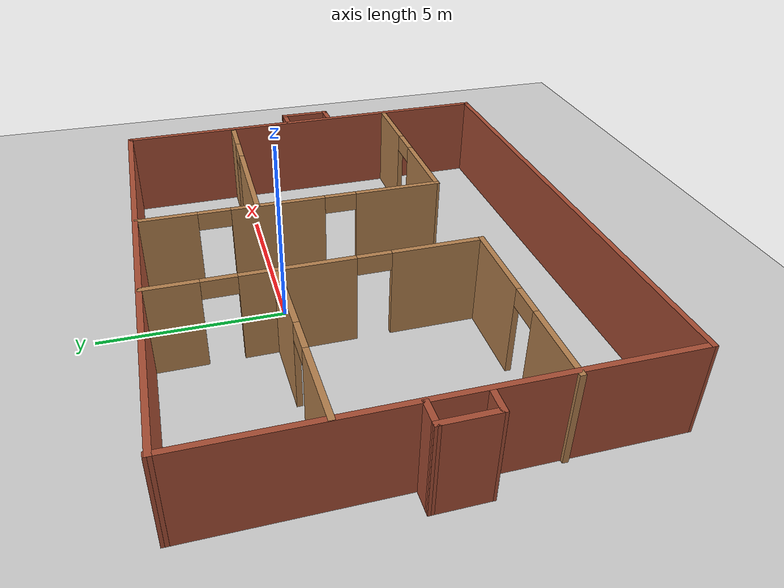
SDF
<sdf version="1.7">
 <world name="default">
  <light name="sun" type="directional">
   <pose>0 0 10 0 -0 0</pose>
   <diffuse>0.8 0.8 0.8 1</diffuse>
   <specular>0.2 0.2 0.2 1</specular>
   <attenuation>
    <range>1000</range>
    <constant>0.9</constant>
    <linear>0.01</linear>
    <quadratic>0.001</quadratic>
   </attenuation>
   <direction>-0.5 0.1 -0.9</direction>
   <spot><inner_angle>0</inner_angle><outer_angle>0</outer_angle><falloff>0</falloff></spot>
  </light>
  <model name="ground_plane">
   <static>1</static>
   <link name="link">
    <collision name="collision">
     <geometry><plane><normal>0 0 1</normal><size>100 100</size></plane></geometry>
     <surface><friction><ode><mu>100</mu><mu2>50</mu2></ode></friction></surface>
    </collision>
    <visual name="visual">
     <cast_shadows>0</cast_shadows>
     <geometry><plane><normal>0 0 1</normal><size>100 100</size></plane></geometry>
     <material>
      <script><uri>file://media/materials/scripts/gazebo.material</uri><name>Gazebo/Grey</name></script>
     </material>
    </visual>
   </link>
  </model>
  <gravity>0 0 -9.8</gravity>
  <magnetic_field>6e-06 2.3e-05 -4.2e-05</magnetic_field>
  <atmosphere type="adiabatic"/>
  <physics type="ode">
   <max_step_size>0.001</max_step_size>
   <real_time_factor>1</real_time_factor>
   <real_time_update_rate>1000</real_time_update_rate>
  </physics>
  <scene><ambient>0.4 0.4 0.4 1</ambient><background>0.7 0.7 0.7 1</background><shadows>1</shadows></scene>
  <audio><device>default</device></audio>
  <spherical_coordinates>
   <surface_model>EARTH_WGS84</surface_model>
   <latitude_deg>0</latitude_deg>
   <longitude_deg>0</longitude_deg>
   <elevation>0</elevation>
   <heading_deg>0</heading_deg>
  </spherical_coordinates>
  <model name="new_world">
   <pose>0.217712 -2.17858 0 0 -0 0</pose>
   <link name="Wall_1">
    <collision name="Wall_1_Collision">
     <geometry><box><size>11.7746 0.15 2.5</size></box></geometry>
     <pose>0 0 1.25 0 -0 0</pose>
    </collision>
    <visual name="Wall_1_Visual">
     <pose>0 0 1.25 0 -0 0</pose>
     <geometry><box><size>11.7746 0.15 2.5</size></box></geometry>
     <material>
      <script><uri>file://media/materials/scripts/gazebo.material</uri><name>Gazebo/Bricks</name></script>
      <ambient>1 1 1 1</ambient>
     </material>
     <meta><layer>0</layer></meta>
    </visual>
    <pose>-6.86351 0 0 0 -0 -1.56393</pose>
   </link>
   <link name="Wall_10">
    <collision name="Wall_10_Collision">
     <geometry><box><size>0.743141 0.15 2.5</size></box></geometry>
     <pose>0 0 1.25 0 -0 0</pose>
    </collision>
    <visual name="Wall_10_Visual">
     <pose>0 0 1.25 0 -0 0</pose>
     <geometry><box><size>0.743141 0.15 2.5</size></box></geometry>
     <material>
      <script><uri>file://media/materials/scripts/gazebo.material</uri><name>Gazebo/Bricks</name></script>
      <ambient>1 1 1 1</ambient>
     </material>
     <meta><layer>0</layer></meta>
    </visual>
    <pose>-7.21282 0.583014 0 0 -0 3.14159</pose>
   </link>
   <link name="Wall_11">
    <collision name="Wall_11_Collision">
     <geometry><box><size>1.50366 0.15 2.5</size></box></geometry>
     <pose>0 0 1.25 0 -0 0</pose>
    </collision>
    <visual name="Wall_11_Visual">
     <pose>0 0 1.25 0 -0 0</pose>
     <geometry><box><size>1.50366 0.15 2.5</size></box></geometry>
     <material>
      <script><uri>file://media/materials/scripts/gazebo.material</uri><name>Gazebo/Bricks</name></script>
      <ambient>1 1 1 1</ambient>
     </material>
     <meta><layer>0</layer></meta>
    </visual>
    <pose>-7.50179 -0.093775 0 0 -0 -1.55956</pose>
   </link>
   <link name="Wall_12">
    <collision name="Wall_12_Collision">
     <geometry><box><size>0.712929 0.15 2.5</size></box></geometry>
     <pose>0 0 1.25 0 -0 0</pose>
    </collision>
    <visual name="Wall_12_Visual">
     <pose>0 0 1.25 0 -0 0</pose>
     <geometry><box><size>0.712929 0.15 2.5</size></box></geometry>
     <material>
      <script><uri>file://media/materials/scripts/gazebo.material</uri><name>Gazebo/Bricks</name></script>
      <ambient>1 1 1 1</ambient>
     </material>
     <meta><layer>0</layer></meta>
    </visual>
    <pose>-7.21282 -0.778169 0 0 -0 -0.02702</pose>
   </link>
   <link name="Wall_14">
    <pose>-1.67441 1.48859 0 0 -0 -1.5584</pose>
    <visual name="Wall_14_Visual_0">
     <pose>-3.61241 0 1.25 0 -0 0</pose>
     <geometry><box><size>1.43961 0.15 2.5</size></box></geometry>
     <material>
      <script><uri>file://media/materials/scripts/gazebo.material</uri><name>Gazebo/Wood</name></script>
      <ambient>1 1 1 1</ambient>
     </material>
     <meta><layer>0</layer></meta>
    </visual>
    <collision name="Wall_14_Collision_0">
     <geometry><box><size>1.43961 0.15 2.5</size></box></geometry>
     <pose>-3.61241 0 1.25 0 -0 0</pose>
    </collision>
    <visual name="Wall_14_Visual_1">
     <pose>-0.525072 0 1.25 0 -0 0</pose>
     <geometry><box><size>2.93506 0.15 2.5</size></box></geometry>
     <material>
      <script><uri>file://media/materials/scripts/gazebo.material</uri><name>Gazebo/Wood</name></script>
      <ambient>1 1 1 1</ambient>
     </material>
     <meta><layer>0</layer></meta>
    </visual>
    <collision name="Wall_14_Collision_1">
     <geometry><box><size>2.93506 0.15 2.5</size></box></geometry>
     <pose>-0.525072 0 1.25 0 -0 0</pose>
    </collision>
    <visual name="Wall_14_Visual_2">
     <pose>3.08733 0 1.25 0 -0 0</pose>
     <geometry><box><size>2.48975 0.15 2.5</size></box></geometry>
     <material>
      <script><uri>file://media/materials/scripts/gazebo.material</uri><name>Gazebo/Wood</name></script>
      <ambient>1 1 1 1</ambient>
     </material>
     <meta><layer>0</layer></meta>
    </visual>
    <collision name="Wall_14_Collision_2">
     <geometry><box><size>2.48975 0.15 2.5</size></box></geometry>
     <pose>3.08733 0 1.25 0 -0 0</pose>
    </collision>
    <visual name="Wall_14_Visual_3">
     <pose>-2.4426 0 2.25 0 -0 0</pose>
     <geometry><box><size>0.9 0.15 0.5</size></box></geometry>
     <material>
      <script><uri>file://media/materials/scripts/gazebo.material</uri><name>Gazebo/Wood</name></script>
      <ambient>1 1 1 1</ambient>
     </material>
     <meta><layer>0</layer></meta>
    </visual>
    <collision name="Wall_14_Collision_3">
     <geometry><box><size>0.9 0.15 0.5</size></box></geometry>
     <pose>-2.4426 0 2.25 0 -0 0</pose>
    </collision>
    <visual name="Wall_14_Visual_4">
     <pose>1.39246 0 2.25 0 -0 0</pose>
     <geometry><box><size>0.9 0.15 0.5</size></box></geometry>
     <material>
      <script><uri>file://media/materials/scripts/gazebo.material</uri><name>Gazebo/Wood</name></script>
      <ambient>1 1 1 1</ambient>
     </material>
     <meta><layer>0</layer></meta>
    </visual>
    <collision name="Wall_14_Collision_4">
     <geometry><box><size>0.9 0.15 0.5</size></box></geometry>
     <pose>1.39246 0 2.25 0 -0 0</pose>
    </collision>
   </link>
   <link name="Wall_15">
    <pose>-4.27764 -2.73286 0 0 -0 3.12835</pose>
    <visual name="Wall_15_Visual_0">
     <pose>-1.54842 0 1.25 0 -0 0</pose>
     <geometry><box><size>2.36562 0.15 2.5</size></box></geometry>
     <material>
      <script><uri>file://media/materials/scripts/gazebo.material</uri><name>Gazebo/Wood</name></script>
      <ambient>1 1 1 1</ambient>
     </material>
     <meta><layer>0</layer></meta>
    </visual>
    <collision name="Wall_15_Collision_0">
     <geometry><box><size>2.36562 0.15 2.5</size></box></geometry>
     <pose>-1.54842 0 1.25 0 -0 0</pose>
    </collision>
    <visual name="Wall_15_Visual_1">
     <pose>1.63281 0 1.25 0 -0 0</pose>
     <geometry><box><size>2.19684 0.15 2.5</size></box></geometry>
     <material>
      <script><uri>file://media/materials/scripts/gazebo.material</uri><name>Gazebo/Wood</name></script>
      <ambient>1 1 1 1</ambient>
     </material>
     <meta><layer>0</layer></meta>
    </visual>
    <collision name="Wall_15_Collision_1">
     <geometry><box><size>2.19684 0.15 2.5</size></box></geometry>
     <pose>1.63281 0 1.25 0 -0 0</pose>
    </collision>
    <visual name="Wall_15_Visual_2">
     <pose>0.084392 0 2.25 0 -0 0</pose>
     <geometry><box><size>0.9 0.15 0.5</size></box></geometry>
     <material>
      <script><uri>file://media/materials/scripts/gazebo.material</uri><name>Gazebo/Wood</name></script>
      <ambient>1 1 1 1</ambient>
     </material>
     <meta><layer>0</layer></meta>
    </visual>
    <collision name="Wall_15_Collision_2">
     <geometry><box><size>0.9 0.15 0.5</size></box></geometry>
     <pose>0.084392 0 2.25 0 -0 0</pose>
    </collision>
   </link>
   <link name="Wall_17">
    <pose>-4.31282 2.49119 0 0 -0 -3.12091</pose>
    <visual name="Wall_17_Visual_0">
     <pose>-1.54913 0 1.25 0 -0 0</pose>
     <geometry><box><size>2.15376 0.15 2.5</size></box></geometry>
     <material>
      <script><uri>file://media/materials/scripts/gazebo.material</uri><name>Gazebo/Wood</name></script>
      <ambient>1 1 1 1</ambient>
     </material>
     <meta><layer>0</layer></meta>
    </visual>
    <collision name="Wall_17_Collision_0">
     <geometry><box><size>2.15376 0.15 2.5</size></box></geometry>
     <pose>-1.54913 0 1.25 0 -0 0</pose>
    </collision>
    <visual name="Wall_17_Visual_1">
     <pose>1.52688 0 1.25 0 -0 0</pose>
     <geometry><box><size>2.19825 0.15 2.5</size></box></geometry>
     <material>
      <script><uri>file://media/materials/scripts/gazebo.material</uri><name>Gazebo/Wood</name></script>
      <ambient>1 1 1 1</ambient>
     </material>
     <meta><layer>0</layer></meta>
    </visual>
    <collision name="Wall_17_Collision_1">
     <geometry><box><size>2.19825 0.15 2.5</size></box></geometry>
     <pose>1.52688 0 1.25 0 -0 0</pose>
    </collision>
    <visual name="Wall_17_Visual_2">
     <pose>-0.022247 0 2.25 0 -0 0</pose>
     <geometry><box><size>0.9 0.15 0.5</size></box></geometry>
     <material>
      <script><uri>file://media/materials/scripts/gazebo.material</uri><name>Gazebo/Wood</name></script>
      <ambient>1 1 1 1</ambient>
     </material>
     <meta><layer>0</layer></meta>
    </visual>
    <collision name="Wall_17_Collision_2">
     <geometry><box><size>0.9 0.15 0.5</size></box></geometry>
     <pose>-0.022247 0 2.25 0 -0 0</pose>
    </collision>
   </link>
   <link name="Wall_19">
    <pose>1.54445 1.50618 0 0 -0 -1.56243</pose>
    <visual name="Wall_19_Visual_0">
     <pose>-3.45326 0 1.25 0 -0 0</pose>
     <geometry><box><size>1.65151 0.15 2.5</size></box></geometry>
     <material>
      <script><uri>file://media/materials/scripts/gazebo.material</uri><name>Gazebo/Wood</name></script>
      <ambient>1 1 1 1</ambient>
     </material>
     <meta><layer>0</layer></meta>
    </visual>
    <collision name="Wall_19_Collision_0">
     <geometry><box><size>1.65151 0.15 2.5</size></box></geometry>
     <pose>-3.45326 0 1.25 0 -0 0</pose>
    </collision>
    <visual name="Wall_19_Visual_1">
     <pose>-0.418921 0 1.25 0 -0 0</pose>
     <geometry><box><size>2.61716 0.15 2.5</size></box></geometry>
     <material>
      <script><uri>file://media/materials/scripts/gazebo.material</uri><name>Gazebo/Wood</name></script>
      <ambient>1 1 1 1</ambient>
     </material>
     <meta><layer>0</layer></meta>
    </visual>
    <collision name="Wall_19_Collision_1">
     <geometry><box><size>2.61716 0.15 2.5</size></box></geometry>
     <pose>-0.418921 0 1.25 0 -0 0</pose>
    </collision>
    <visual name="Wall_19_Visual_2">
     <pose>3.03434 0 1.25 0 -0 0</pose>
     <geometry><box><size>2.48935 0.15 2.5</size></box></geometry>
     <material>
      <script><uri>file://media/materials/scripts/gazebo.material</uri><name>Gazebo/Wood</name></script>
      <ambient>1 1 1 1</ambient>
     </material>
     <meta><layer>0</layer></meta>
    </visual>
    <collision name="Wall_19_Collision_2">
     <geometry><box><size>2.48935 0.15 2.5</size></box></geometry>
     <pose>3.03434 0 1.25 0 -0 0</pose>
    </collision>
    <visual name="Wall_19_Visual_3">
     <pose>-2.1775 0 2.25 0 -0 0</pose>
     <geometry><box><size>0.9 0.15 0.5</size></box></geometry>
     <material>
      <script><uri>file://media/materials/scripts/gazebo.material</uri><name>Gazebo/Wood</name></script>
      <ambient>1 1 1 1</ambient>
     </material>
     <meta><layer>0</layer></meta>
    </visual>
    <collision name="Wall_19_Collision_3">
     <geometry><box><size>0.9 0.15 0.5</size></box></geometry>
     <pose>-2.1775 0 2.25 0 -0 0</pose>
    </collision>
    <visual name="Wall_19_Visual_4">
     <pose>1.33966 0 2.25 0 -0 0</pose>
     <geometry><box><size>0.9 0.15 0.5</size></box></geometry>
     <material>
      <script><uri>file://media/materials/scripts/gazebo.material</uri><name>Gazebo/Wood</name></script>
      <ambient>1 1 1 1</ambient>
     </material>
     <meta><layer>0</layer></meta>
    </visual>
    <collision name="Wall_19_Collision_4">
     <geometry><box><size>0.9 0.15 0.5</size></box></geometry>
     <pose>1.33966 0 2.25 0 -0 0</pose>
    </collision>
   </link>
   <link name="Wall_2">
    <collision name="Wall_2_Collision">
     <geometry><box><size>13.9822 0.15 2.5</size></box></geometry>
     <pose>0 0 1.25 0 -0 0</pose>
    </collision>
    <visual name="Wall_2_Visual">
     <pose>0 0 1.25 0 -0 0</pose>
     <geometry><box><size>13.9822 0.15 2.5</size></box></geometry>
     <material>
      <script><uri>file://media/materials/scripts/gazebo.material</uri><name>Gazebo/Bricks</name></script>
      <ambient>1 1 1 1</ambient>
     </material>
     <meta><layer>0</layer></meta>
    </visual>
    <pose>0.092438 -5.78554 0 0 -0 0.003846</pose>
   </link>
   <link name="Wall_20">
    <pose>4.21803 -2.69768 0 0 -0 0</pose>
    <visual name="Wall_20_Visual_0">
     <pose>-1.45694 0 1.25 0 -0 0</pose>
     <geometry><box><size>2.51293 0.15 2.5</size></box></geometry>
     <material>
      <script><uri>file://media/materials/scripts/gazebo.material</uri><name>Gazebo/Wood</name></script>
      <ambient>1 1 1 1</ambient>
     </material>
     <meta><layer>0</layer></meta>
    </visual>
    <collision name="Wall_20_Collision_0">
     <geometry><box><size>2.51293 0.15 2.5</size></box></geometry>
     <pose>-1.45694 0 1.25 0 -0 0</pose>
    </collision>
    <visual name="Wall_20_Visual_1">
     <pose>1.70647 0 1.25 0 -0 0</pose>
     <geometry><box><size>2.01388 0.15 2.5</size></box></geometry>
     <material>
      <script><uri>file://media/materials/scripts/gazebo.material</uri><name>Gazebo/Wood</name></script>
      <ambient>1 1 1 1</ambient>
     </material>
     <meta><layer>0</layer></meta>
    </visual>
    <collision name="Wall_20_Collision_1">
     <geometry><box><size>2.01388 0.15 2.5</size></box></geometry>
     <pose>1.70647 0 1.25 0 -0 0</pose>
    </collision>
    <visual name="Wall_20_Visual_2">
     <pose>0.249524 0 2.25 0 -0 0</pose>
     <geometry><box><size>0.9 0.15 0.5</size></box></geometry>
     <material>
      <script><uri>file://media/materials/scripts/gazebo.material</uri><name>Gazebo/Wood</name></script>
      <ambient>1 1 1 1</ambient>
     </material>
     <meta><layer>0</layer></meta>
    </visual>
    <collision name="Wall_20_Collision_2">
     <geometry><box><size>0.9 0.15 0.5</size></box></geometry>
     <pose>0.249524 0 2.25 0 -0 0</pose>
    </collision>
   </link>
   <link name="Wall_22">
    <pose>4.1125 2.49119 0 0 -0 -0.006849</pose>
    <visual name="Wall_22_Visual_0">
     <pose>-0.999891 0 1.25 0 -0 0</pose>
     <geometry><box><size>3.28644 0.15 2.5</size></box></geometry>
     <material>
      <script><uri>file://media/materials/scripts/gazebo.material</uri><name>Gazebo/Wood</name></script>
      <ambient>1 1 1 1</ambient>
     </material>
     <meta><layer>0</layer></meta>
    </visual>
    <collision name="Wall_22_Collision_0">
     <geometry><box><size>3.28644 0.15 2.5</size></box></geometry>
     <pose>-0.999891 0 1.25 0 -0 0</pose>
    </collision>
    <visual name="Wall_22_Visual_1">
     <pose>2.09322 0 1.25 0 -0 0</pose>
     <geometry><box><size>1.09978 0.15 2.5</size></box></geometry>
     <material>
      <script><uri>file://media/materials/scripts/gazebo.material</uri><name>Gazebo/Wood</name></script>
      <ambient>1 1 1 1</ambient>
     </material>
     <meta><layer>0</layer></meta>
    </visual>
    <collision name="Wall_22_Collision_1">
     <geometry><box><size>1.09978 0.15 2.5</size></box></geometry>
     <pose>2.09322 0 1.25 0 -0 0</pose>
    </collision>
    <visual name="Wall_22_Visual_2">
     <pose>1.09333 0 2.25 0 -0 0</pose>
     <geometry><box><size>0.9 0.15 0.5</size></box></geometry>
     <material>
      <script><uri>file://media/materials/scripts/gazebo.material</uri><name>Gazebo/Wood</name></script>
      <ambient>1 1 1 1</ambient>
     </material>
     <meta><layer>0</layer></meta>
    </visual>
    <collision name="Wall_22_Collision_2">
     <geometry><box><size>0.9 0.15 0.5</size></box></geometry>
     <pose>1.09333 0 2.25 0 -0 0</pose>
    </collision>
   </link>
   <link name="Wall_28">
    <collision name="Wall_28_Collision">
     <geometry><box><size>0.710803 0.15 2.5</size></box></geometry>
     <pose>0 0 1.25 0 -0 0</pose>
    </collision>
    <visual name="Wall_28_Visual">
     <pose>0 0 1.25 0 -0 0</pose>
     <geometry><box><size>0.710803 0.15 2.5</size></box></geometry>
     <material>
      <script><uri>file://media/materials/scripts/gazebo.material</uri><name>Gazebo/Bricks</name></script>
      <ambient>1 1 1 1</ambient>
     </material>
     <meta><layer>0</layer></meta>
    </visual>
    <pose>7.22738 0.619881 0 0 -0 0.035699</pose>
   </link>
   <link name="Wall_29">
    <collision name="Wall_29_Collision">
     <geometry><box><size>1.53004 0.15 2.5</size></box></geometry>
     <pose>0 0 1.25 0 -0 0</pose>
    </collision>
    <visual name="Wall_29_Visual">
     <pose>0 0 1.25 0 -0 0</pose>
     <geometry><box><size>1.53004 0.15 2.5</size></box></geometry>
     <material>
      <script><uri>file://media/materials/scripts/gazebo.material</uri><name>Gazebo/Bricks</name></script>
      <ambient>1 1 1 1</ambient>
     </material>
     <meta><layer>0</layer></meta>
    </visual>
    <pose>7.50238 -0.060119 0 0 -0 -1.57804</pose>
   </link>
   <link name="Wall_3">
    <collision name="Wall_3_Collision">
     <geometry><box><size>11.6694 0.15 2.5</size></box></geometry>
     <pose>0 0 1.25 0 -0 0</pose>
    </collision>
    <visual name="Wall_3_Visual">
     <pose>0 0 1.25 0 -0 0</pose>
     <geometry><box><size>11.6694 0.15 2.5</size></box></geometry>
     <material>
      <script><uri>file://media/materials/scripts/gazebo.material</uri><name>Gazebo/Bricks</name></script>
      <ambient>1 1 1 1</ambient>
     </material>
     <meta><layer>0</layer></meta>
    </visual>
    <pose>6.91539 0 0 0 -0 1.58696</pose>
   </link>
   <link name="Wall_30">
    <collision name="Wall_30_Collision">
     <geometry><box><size>0.620425 0.15 2.5</size></box></geometry>
     <pose>0 0 1.25 0 -0 0</pose>
    </collision>
    <visual name="Wall_30_Visual">
     <pose>0 0 1.25 0 -0 0</pose>
     <geometry><box><size>0.620425 0.15 2.5</size></box></geometry>
     <material>
      <script><uri>file://media/materials/scripts/gazebo.material</uri><name>Gazebo/Bricks</name></script>
      <ambient>1 1 1 1</ambient>
     </material>
     <meta><layer>0</layer></meta>
    </visual>
    <pose>7.26238 -0.760119 0 0 -0 -3.09906</pose>
   </link>
   <link name="Wall_4">
    <collision name="Wall_4_Collision">
     <geometry><box><size>13.8757 0.15 2.5</size></box></geometry>
     <pose>0 0 1.25 0 -0 0</pose>
    </collision>
    <visual name="Wall_4_Visual">
     <pose>0 0 1.25 0 -0 0</pose>
     <geometry><box><size>13.8757 0.15 2.5</size></box></geometry>
     <material>
      <script><uri>file://media/materials/scripts/gazebo.material</uri><name>Gazebo/Bricks</name></script>
      <ambient>1 1 1 1</ambient>
     </material>
     <meta><layer>0</layer></meta>
    </visual>
    <pose>-0.040563 5.77224 0 0 -0 3.13965</pose>
   </link>
   <static>1</static>
  </model>
  <model name="wooden_case">
   <link name="base">
    <pose>0 0 0.024 0 -0 0</pose>
    <inertial>
     <pose>-0.022184 0 0.171592 0 -0 0</pose>
     <mass>3.96264</mass>
     <inertia>
      <ixx>0.213536</ixx>
      <ixy>0</ixy>
      <ixz>0.000779377</ixz>
      <iyy>0.0708943</iyy>
      <iyz>0</iyz>
      <izz>0.154604</izz>
     </inertia>
    </inertial>
    <collision name="collision_back">
     <pose>-0.053975 0 0.1778 0 -0 0</pose>
     <geometry><box><size>0.01905 0.5461 0.3175</size></box></geometry>
     <surface>
      <contact>
       <poissons_ratio>0.347</poissons_ratio>
       <elastic_modulus>8.8e+09</elastic_modulus>
       <ode><kp>100000</kp><kd>100</kd><max_vel>100</max_vel><min_depth>0.001</min_depth></ode>
      </contact>
      <friction>
       <torsional>
        <coefficient>1</coefficient>
        <use_patch_radius>0</use_patch_radius>
        <surface_radius>0.01</surface_radius>
       </torsional>
      </friction>
     </surface>
    </collision>
    <visual name="visual_back">
     <pose>-0.053975 0 0.1778 0 -0 0</pose>
     <geometry><box><size>0.01905 0.5461 0.3175</size></box></geometry>
     <material>
      <script><uri>file://media/materials/scripts/gazebo.material</uri><name>Gazebo/Wood</name></script>
     </material>
    </visual>
    <collision name="collision_bottom">
     <pose>0 0 0.009525 0 -0 0</pose>
     <geometry><box><size>0.127 0.5842 0.01905</size></box></geometry>
     <surface>
      <contact>
       <poissons_ratio>0.347</poissons_ratio>
       <elastic_modulus>8.8e+09</elastic_modulus>
       <ode><kp>100000</kp><kd>100</kd><max_vel>100</max_vel><min_depth>0.001</min_depth></ode>
      </contact>
      <friction>
       <torsional>
        <coefficient>1</coefficient>
        <use_patch_radius>0</use_patch_radius>
        <surface_radius>0.01</surface_radius>
       </torsional>
      </friction>
     </surface>
    </collision>
    <visual name="visual_bottom">
     <pose>0 0 0.009525 0 -0 0</pose>
     <geometry><box><size>0.127 0.5842 0.01905</size></box></geometry>
     <material>
      <script><uri>file://media/materials/scripts/gazebo.material</uri><name>Gazebo/Wood</name></script>
     </material>
    </visual>
    <collision name="collision_top">
     <pose>0 0 0.346075 0 -0 0</pose>
     <geometry><box><size>0.127 0.5842 0.01905</size></box></geometry>
     <surface>
      <contact>
       <poissons_ratio>0.347</poissons_ratio>
       <elastic_modulus>8.8e+09</elastic_modulus>
       <ode><kp>100000</kp><kd>100</kd><max_vel>100</max_vel><min_depth>0.001</min_depth></ode>
      </contact>
      <friction>
       <torsional>
        <coefficient>1</coefficient>
        <use_patch_radius>0</use_patch_radius>
        <surface_radius>0.01</surface_radius>
       </torsional>
      </friction>
     </surface>
    </collision>
    <visual name="visual_top">
     <pose>0 0 0.346075 0 -0 0</pose>
     <geometry><box><size>0.127 0.5842 0.01905</size></box></geometry>
     <material>
      <script><uri>file://media/materials/scripts/gazebo.material</uri><name>Gazebo/Wood</name></script>
     </material>
    </visual>
    <collision name="collision_left">
     <pose>0 -0.282575 0.1778 0 -0 0</pose>
     <geometry><box><size>0.127 0.01905 0.3175</size></box></geometry>
     <surface>
      <contact>
       <poissons_ratio>0.347</poissons_ratio>
       <elastic_modulus>8.8e+09</elastic_modulus>
       <ode><kp>100000</kp><kd>100</kd><max_vel>100</max_vel><min_depth>0.001</min_depth></ode>
      </contact>
      <friction>
       <torsional>
        <coefficient>1</coefficient>
        <use_patch_radius>0</use_patch_radius>
        <surface_radius>0.01</surface_radius>
       </torsional>
      </friction>
     </surface>
    </collision>
    <visual name="visual_left">
     <pose>0 -0.282575 0.1778 0 -0 0</pose>
     <geometry><box><size>0.127 0.01905 0.3175</size></box></geometry>
     <material>
      <script><uri>file://media/materials/scripts/gazebo.material</uri><name>Gazebo/Wood</name></script>
     </material>
    </visual>
    <collision name="collision_right">
     <pose>0 0.282575 0.1778 0 -0 0</pose>
     <geometry><box><size>0.127 0.01905 0.3175</size></box></geometry>
     <surface>
      <contact>
       <poissons_ratio>0.347</poissons_ratio>
       <elastic_modulus>8.8e+09</elastic_modulus>
       <ode><kp>100000</kp><kd>100</kd><max_vel>100</max_vel><min_depth>0.001</min_depth></ode>
      </contact>
      <friction>
       <torsional>
        <coefficient>1</coefficient>
        <use_patch_radius>0</use_patch_radius>
        <surface_radius>0.01</surface_radius>
       </torsional>
      </friction>
     </surface>
    </collision>
    <visual name="visual_right">
     <pose>0 0.282575 0.1778 0 -0 0</pose>
     <geometry><box><size>0.127 0.01905 0.3175</size></box></geometry>
     <material>
      <script><uri>file://media/materials/scripts/gazebo.material</uri><name>Gazebo/Wood</name></script>
     </material>
    </visual>
    <collision name="collision_block_left">
     <pose>0.0095 -0.2151 -0.012 0 -0 0</pose>
     <geometry><box><size>0.108 0.05 0.024</size></box></geometry>
     <surface>
      <contact>
       <poissons_ratio>0.347</poissons_ratio>
       <elastic_modulus>8.8e+09</elastic_modulus>
       <ode><kp>100000</kp><kd>100</kd><max_vel>100</max_vel><min_depth>0.001</min_depth></ode>
      </contact>
      <friction>
       <torsional>
        <coefficient>1</coefficient>
        <use_patch_radius>0</use_patch_radius>
        <surface_radius>0.01</surface_radius>
       </torsional>
      </friction>
     </surface>
    </collision>
    <visual name="visual_block_left">
     <pose>0.0095 -0.2151 -0.012 0 -0 0</pose>
     <geometry><box><size>0.108 0.05 0.024</size></box></geometry>
     <material>
      <script><uri>file://media/materials/scripts/gazebo.material</uri><name>Gazebo/Wood</name></script>
     </material>
    </visual>
    <collision name="collision_block_right">
     <pose>0.0095 0.2151 -0.012 0 -0 0</pose>
     <geometry><box><size>0.108 0.05 0.024</size></box></geometry>
     <surface>
      <contact>
       <poissons_ratio>0.347</poissons_ratio>
       <elastic_modulus>8.8e+09</elastic_modulus>
       <ode><kp>100000</kp><kd>100</kd><max_vel>100</max_vel><min_depth>0.001</min_depth></ode>
      </contact>
      <friction>
       <torsional>
        <coefficient>1</coefficient>
        <use_patch_radius>0</use_patch_radius>
        <surface_radius>0.01</surface_radius>
       </torsional>
      </friction>
     </surface>
    </collision>
    <visual name="visual_block_right">
     <pose>0.0095 0.2151 -0.012 0 -0 0</pose>
     <geometry><box><size>0.108 0.05 0.024</size></box></geometry>
     <material>
      <script><uri>file://media/materials/scripts/gazebo.material</uri><name>Gazebo/Wood</name></script>
     </material>
    </visual>
   </link>
   <link name="lid">
    <pose>0.243775 0 0.009525 0 -0 0</pose>
    <inertial>
     <mass>1.97874</mass>
     <inertia>
      <ixx>0.0563367</ixx>
      <ixy>0</ixy>
      <ixz>0</ixz>
      <iyy>0.020911</iyy>
      <iyz>0</iyz>
      <izz>0.0771281</izz>
     </inertia>
    </inertial>
    <collision name="collision">
     <geometry><box><size>0.3556 0.5842 0.01905</size></box></geometry>
     <surface>
      <contact>
       <poissons_ratio>0.347</poissons_ratio>
       <elastic_modulus>8.8e+09</elastic_modulus>
       <ode><kp>100000</kp><kd>100</kd><max_vel>100</max_vel><min_depth>0.001</min_depth></ode>
      </contact>
      <friction>
       <torsional>
        <coefficient>1</coefficient>
        <use_patch_radius>0</use_patch_radius>
        <surface_radius>0.01</surface_radius>
       </torsional>
      </friction>
     </surface>
    </collision>
    <visual name="visual">
     <geometry><box><size>0.3556 0.5842 0.01905</size></box></geometry>
     <material>
      <script><uri>file://media/materials/scripts/gazebo.material</uri><name>Gazebo/Wood</name></script>
     </material>
    </visual>
    <visual name="tee_nut_1">
     <pose>0.122 -0.216 0 0 -0 0</pose>
     <geometry><cylinder><radius>0.00635</radius><length>0.0192405</length></cylinder></geometry>
     <material>
      <script><uri>file://media/materials/scripts/gazebo.material</uri><name>Gazebo/Grey</name></script>
     </material>
    </visual>
    <visual name="tee_nut_2">
     <pose>0.122 -0.088 0 0 -0 0</pose>
     <geometry><cylinder><radius>0.00635</radius><length>0.0192405</length></cylinder></geometry>
     <material>
      <script><uri>file://media/materials/scripts/gazebo.material</uri><name>Gazebo/Grey</name></script>
     </material>
    </visual>
    <visual name="tee_nut_3">
     <pose>0.122 0.088 0 0 -0 0</pose>
     <geometry><cylinder><radius>0.00635</radius><length>0.0192405</length></cylinder></geometry>
     <material>
      <script><uri>file://media/materials/scripts/gazebo.material</uri><name>Gazebo/Grey</name></script>
     </material>
    </visual>
    <visual name="tee_nut_4">
     <pose>0.122 0.216 0 0 -0 0</pose>
     <geometry><cylinder><radius>0.00635</radius><length>0.0192405</length></cylinder></geometry>
     <material>
      <script><uri>file://media/materials/scripts/gazebo.material</uri><name>Gazebo/Grey</name></script>
     </material>
    </visual>
   </link>
   <joint name="lid_hinge" type="revolute">
    <pose>-0.1778 0 0.01905 0 -0 0</pose>
    <parent>base</parent>
    <child>lid</child>
    <axis>
     <xyz>0 1 0</xyz>
     <limit><upper>0.523599</upper><lower>-1.5708</lower></limit>
     <dynamics><spring_reference>0</spring_reference><spring_stiffness>0</spring_stiffness></dynamics>
    </axis>
   </joint>
   <pose>-1.23956 0.597597 -0.001057 0 -0.000429 0</pose>
  </model>
  <model name="wooden_case_0">
   <link name="base">
    <pose>0 0 0.024 0 -0 0</pose>
    <inertial>
     <pose>-0.022184 0 0.171592 0 -0 0</pose>
     <mass>3.96264</mass>
     <inertia>
      <ixx>0.213536</ixx>
      <ixy>0</ixy>
      <ixz>0.000779377</ixz>
      <iyy>0.0708943</iyy>
      <iyz>0</iyz>
      <izz>0.154604</izz>
     </inertia>
    </inertial>
    <collision name="collision_back">
     <pose>-0.053975 0 0.1778 0 -0 0</pose>
     <geometry><box><size>0.01905 0.5461 0.3175</size></box></geometry>
     <surface>
      <contact>
       <poissons_ratio>0.347</poissons_ratio>
       <elastic_modulus>8.8e+09</elastic_modulus>
       <ode><kp>100000</kp><kd>100</kd><max_vel>100</max_vel><min_depth>0.001</min_depth></ode>
      </contact>
      <friction>
       <torsional>
        <coefficient>1</coefficient>
        <use_patch_radius>0</use_patch_radius>
        <surface_radius>0.01</surface_radius>
       </torsional>
      </friction>
     </surface>
    </collision>
    <visual name="visual_back">
     <pose>-0.053975 0 0.1778 0 -0 0</pose>
     <geometry><box><size>0.01905 0.5461 0.3175</size></box></geometry>
     <material>
      <script><uri>file://media/materials/scripts/gazebo.material</uri><name>Gazebo/Wood</name></script>
     </material>
    </visual>
    <collision name="collision_bottom">
     <pose>0 0 0.009525 0 -0 0</pose>
     <geometry><box><size>0.127 0.5842 0.01905</size></box></geometry>
     <surface>
      <contact>
       <poissons_ratio>0.347</poissons_ratio>
       <elastic_modulus>8.8e+09</elastic_modulus>
       <ode><kp>100000</kp><kd>100</kd><max_vel>100</max_vel><min_depth>0.001</min_depth></ode>
      </contact>
      <friction>
       <torsional>
        <coefficient>1</coefficient>
        <use_patch_radius>0</use_patch_radius>
        <surface_radius>0.01</surface_radius>
       </torsional>
      </friction>
     </surface>
    </collision>
    <visual name="visual_bottom">
     <pose>0 0 0.009525 0 -0 0</pose>
     <geometry><box><size>0.127 0.5842 0.01905</size></box></geometry>
     <material>
      <script><uri>file://media/materials/scripts/gazebo.material</uri><name>Gazebo/Wood</name></script>
     </material>
    </visual>
    <collision name="collision_top">
     <pose>0 0 0.346075 0 -0 0</pose>
     <geometry><box><size>0.127 0.5842 0.01905</size></box></geometry>
     <surface>
      <contact>
       <poissons_ratio>0.347</poissons_ratio>
       <elastic_modulus>8.8e+09</elastic_modulus>
       <ode><kp>100000</kp><kd>100</kd><max_vel>100</max_vel><min_depth>0.001</min_depth></ode>
      </contact>
      <friction>
       <torsional>
        <coefficient>1</coefficient>
        <use_patch_radius>0</use_patch_radius>
        <surface_radius>0.01</surface_radius>
       </torsional>
      </friction>
     </surface>
    </collision>
    <visual name="visual_top">
     <pose>0 0 0.346075 0 -0 0</pose>
     <geometry><box><size>0.127 0.5842 0.01905</size></box></geometry>
     <material>
      <script><uri>file://media/materials/scripts/gazebo.material</uri><name>Gazebo/Wood</name></script>
     </material>
    </visual>
    <collision name="collision_left">
     <pose>0 -0.282575 0.1778 0 -0 0</pose>
     <geometry><box><size>0.127 0.01905 0.3175</size></box></geometry>
     <surface>
      <contact>
       <poissons_ratio>0.347</poissons_ratio>
       <elastic_modulus>8.8e+09</elastic_modulus>
       <ode><kp>100000</kp><kd>100</kd><max_vel>100</max_vel><min_depth>0.001</min_depth></ode>
      </contact>
      <friction>
       <torsional>
        <coefficient>1</coefficient>
        <use_patch_radius>0</use_patch_radius>
        <surface_radius>0.01</surface_radius>
       </torsional>
      </friction>
     </surface>
    </collision>
    <visual name="visual_left">
     <pose>0 -0.282575 0.1778 0 -0 0</pose>
     <geometry><box><size>0.127 0.01905 0.3175</size></box></geometry>
     <material>
      <script><uri>file://media/materials/scripts/gazebo.material</uri><name>Gazebo/Wood</name></script>
     </material>
    </visual>
    <collision name="collision_right">
     <pose>0 0.282575 0.1778 0 -0 0</pose>
     <geometry><box><size>0.127 0.01905 0.3175</size></box></geometry>
     <surface>
      <contact>
       <poissons_ratio>0.347</poissons_ratio>
       <elastic_modulus>8.8e+09</elastic_modulus>
       <ode><kp>100000</kp><kd>100</kd><max_vel>100</max_vel><min_depth>0.001</min_depth></ode>
      </contact>
      <friction>
       <torsional>
        <coefficient>1</coefficient>
        <use_patch_radius>0</use_patch_radius>
        <surface_radius>0.01</surface_radius>
       </torsional>
      </friction>
     </surface>
    </collision>
    <visual name="visual_right">
     <pose>0 0.282575 0.1778 0 -0 0</pose>
     <geometry><box><size>0.127 0.01905 0.3175</size></box></geometry>
     <material>
      <script><uri>file://media/materials/scripts/gazebo.material</uri><name>Gazebo/Wood</name></script>
     </material>
    </visual>
    <collision name="collision_block_left">
     <pose>0.0095 -0.2151 -0.012 0 -0 0</pose>
     <geometry><box><size>0.108 0.05 0.024</size></box></geometry>
     <surface>
      <contact>
       <poissons_ratio>0.347</poissons_ratio>
       <elastic_modulus>8.8e+09</elastic_modulus>
       <ode><kp>100000</kp><kd>100</kd><max_vel>100</max_vel><min_depth>0.001</min_depth></ode>
      </contact>
      <friction>
       <torsional>
        <coefficient>1</coefficient>
        <use_patch_radius>0</use_patch_radius>
        <surface_radius>0.01</surface_radius>
       </torsional>
      </friction>
     </surface>
    </collision>
    <visual name="visual_block_left">
     <pose>0.0095 -0.2151 -0.012 0 -0 0</pose>
     <geometry><box><size>0.108 0.05 0.024</size></box></geometry>
     <material>
      <script><uri>file://media/materials/scripts/gazebo.material</uri><name>Gazebo/Wood</name></script>
     </material>
    </visual>
    <collision name="collision_block_right">
     <pose>0.0095 0.2151 -0.012 0 -0 0</pose>
     <geometry><box><size>0.108 0.05 0.024</size></box></geometry>
     <surface>
      <contact>
       <poissons_ratio>0.347</poissons_ratio>
       <elastic_modulus>8.8e+09</elastic_modulus>
       <ode><kp>100000</kp><kd>100</kd><max_vel>100</max_vel><min_depth>0.001</min_depth></ode>
      </contact>
      <friction>
       <torsional>
        <coefficient>1</coefficient>
        <use_patch_radius>0</use_patch_radius>
        <surface_radius>0.01</surface_radius>
       </torsional>
      </friction>
     </surface>
    </collision>
    <visual name="visual_block_right">
     <pose>0.0095 0.2151 -0.012 0 -0 0</pose>
     <geometry><box><size>0.108 0.05 0.024</size></box></geometry>
     <material>
      <script><uri>file://media/materials/scripts/gazebo.material</uri><name>Gazebo/Wood</name></script>
     </material>
    </visual>
   </link>
   <link name="lid">
    <pose>0.243775 0 0.009525 0 -0 0</pose>
    <inertial>
     <mass>1.97874</mass>
     <inertia>
      <ixx>0.0563367</ixx>
      <ixy>0</ixy>
      <ixz>0</ixz>
      <iyy>0.020911</iyy>
      <iyz>0</iyz>
      <izz>0.0771281</izz>
     </inertia>
    </inertial>
    <collision name="collision">
     <geometry><box><size>0.3556 0.5842 0.01905</size></box></geometry>
     <surface>
      <contact>
       <poissons_ratio>0.347</poissons_ratio>
       <elastic_modulus>8.8e+09</elastic_modulus>
       <ode><kp>100000</kp><kd>100</kd><max_vel>100</max_vel><min_depth>0.001</min_depth></ode>
      </contact>
      <friction>
       <torsional>
        <coefficient>1</coefficient>
        <use_patch_radius>0</use_patch_radius>
        <surface_radius>0.01</surface_radius>
       </torsional>
      </friction>
     </surface>
    </collision>
    <visual name="visual">
     <geometry><box><size>0.3556 0.5842 0.01905</size></box></geometry>
     <material>
      <script><uri>file://media/materials/scripts/gazebo.material</uri><name>Gazebo/Wood</name></script>
     </material>
    </visual>
    <visual name="tee_nut_1">
     <pose>0.122 -0.216 0 0 -0 0</pose>
     <geometry><cylinder><radius>0.00635</radius><length>0.0192405</length></cylinder></geometry>
     <material>
      <script><uri>file://media/materials/scripts/gazebo.material</uri><name>Gazebo/Grey</name></script>
     </material>
    </visual>
    <visual name="tee_nut_2">
     <pose>0.122 -0.088 0 0 -0 0</pose>
     <geometry><cylinder><radius>0.00635</radius><length>0.0192405</length></cylinder></geometry>
     <material>
      <script><uri>file://media/materials/scripts/gazebo.material</uri><name>Gazebo/Grey</name></script>
     </material>
    </visual>
    <visual name="tee_nut_3">
     <pose>0.122 0.088 0 0 -0 0</pose>
     <geometry><cylinder><radius>0.00635</radius><length>0.0192405</length></cylinder></geometry>
     <material>
      <script><uri>file://media/materials/scripts/gazebo.material</uri><name>Gazebo/Grey</name></script>
     </material>
    </visual>
    <visual name="tee_nut_4">
     <pose>0.122 0.216 0 0 -0 0</pose>
     <geometry><cylinder><radius>0.00635</radius><length>0.0192405</length></cylinder></geometry>
     <material>
      <script><uri>file://media/materials/scripts/gazebo.material</uri><name>Gazebo/Grey</name></script>
     </material>
    </visual>
   </link>
   <joint name="lid_hinge" type="revolute">
    <pose>-0.1778 0 0.01905 0 -0 0</pose>
    <parent>base</parent>
    <child>lid</child>
    <axis>
     <xyz>0 1 0</xyz>
     <limit><upper>0.523599</upper><lower>-1.5708</lower></limit>
     <dynamics><spring_reference>0</spring_reference><spring_stiffness>0</spring_stiffness></dynamics>
    </axis>
   </joint>
   <pose>-1.2446 0.002032 -0.001057 0 -0.000428 0</pose>
  </model>
  <model name="wooden_case_1">
   <link name="base">
    <pose>0 0 0.024 0 -0 0</pose>
    <inertial>
     <pose>-0.022184 0 0.171592 0 -0 0</pose>
     <mass>3.96264</mass>
     <inertia>
      <ixx>0.213536</ixx>
      <ixy>0</ixy>
      <ixz>0.000779377</ixz>
      <iyy>0.0708943</iyy>
      <iyz>0</iyz>
      <izz>0.154604</izz>
     </inertia>
    </inertial>
    <collision name="collision_back">
     <pose>-0.053975 0 0.1778 0 -0 0</pose>
     <geometry><box><size>0.01905 0.5461 0.3175</size></box></geometry>
     <surface>
      <contact>
       <poissons_ratio>0.347</poissons_ratio>
       <elastic_modulus>8.8e+09</elastic_modulus>
       <ode><kp>100000</kp><kd>100</kd><max_vel>100</max_vel><min_depth>0.001</min_depth></ode>
      </contact>
      <friction>
       <torsional>
        <coefficient>1</coefficient>
        <use_patch_radius>0</use_patch_radius>
        <surface_radius>0.01</surface_radius>
       </torsional>
      </friction>
     </surface>
    </collision>
    <visual name="visual_back">
     <pose>-0.053975 0 0.1778 0 -0 0</pose>
     <geometry><box><size>0.01905 0.5461 0.3175</size></box></geometry>
     <material>
      <script><uri>file://media/materials/scripts/gazebo.material</uri><name>Gazebo/Wood</name></script>
     </material>
    </visual>
    <collision name="collision_bottom">
     <pose>0 0 0.009525 0 -0 0</pose>
     <geometry><box><size>0.127 0.5842 0.01905</size></box></geometry>
     <surface>
      <contact>
       <poissons_ratio>0.347</poissons_ratio>
       <elastic_modulus>8.8e+09</elastic_modulus>
       <ode><kp>100000</kp><kd>100</kd><max_vel>100</max_vel><min_depth>0.001</min_depth></ode>
      </contact>
      <friction>
       <torsional>
        <coefficient>1</coefficient>
        <use_patch_radius>0</use_patch_radius>
        <surface_radius>0.01</surface_radius>
       </torsional>
      </friction>
     </surface>
    </collision>
    <visual name="visual_bottom">
     <pose>0 0 0.009525 0 -0 0</pose>
     <geometry><box><size>0.127 0.5842 0.01905</size></box></geometry>
     <material>
      <script><uri>file://media/materials/scripts/gazebo.material</uri><name>Gazebo/Wood</name></script>
     </material>
    </visual>
    <collision name="collision_top">
     <pose>0 0 0.346075 0 -0 0</pose>
     <geometry><box><size>0.127 0.5842 0.01905</size></box></geometry>
     <surface>
      <contact>
       <poissons_ratio>0.347</poissons_ratio>
       <elastic_modulus>8.8e+09</elastic_modulus>
       <ode><kp>100000</kp><kd>100</kd><max_vel>100</max_vel><min_depth>0.001</min_depth></ode>
      </contact>
      <friction>
       <torsional>
        <coefficient>1</coefficient>
        <use_patch_radius>0</use_patch_radius>
        <surface_radius>0.01</surface_radius>
       </torsional>
      </friction>
     </surface>
    </collision>
    <visual name="visual_top">
     <pose>0 0 0.346075 0 -0 0</pose>
     <geometry><box><size>0.127 0.5842 0.01905</size></box></geometry>
     <material>
      <script><uri>file://media/materials/scripts/gazebo.material</uri><name>Gazebo/Wood</name></script>
     </material>
    </visual>
    <collision name="collision_left">
     <pose>0 -0.282575 0.1778 0 -0 0</pose>
     <geometry><box><size>0.127 0.01905 0.3175</size></box></geometry>
     <surface>
      <contact>
       <poissons_ratio>0.347</poissons_ratio>
       <elastic_modulus>8.8e+09</elastic_modulus>
       <ode><kp>100000</kp><kd>100</kd><max_vel>100</max_vel><min_depth>0.001</min_depth></ode>
      </contact>
      <friction>
       <torsional>
        <coefficient>1</coefficient>
        <use_patch_radius>0</use_patch_radius>
        <surface_radius>0.01</surface_radius>
       </torsional>
      </friction>
     </surface>
    </collision>
    <visual name="visual_left">
     <pose>0 -0.282575 0.1778 0 -0 0</pose>
     <geometry><box><size>0.127 0.01905 0.3175</size></box></geometry>
     <material>
      <script><uri>file://media/materials/scripts/gazebo.material</uri><name>Gazebo/Wood</name></script>
     </material>
    </visual>
    <collision name="collision_right">
     <pose>0 0.282575 0.1778 0 -0 0</pose>
     <geometry><box><size>0.127 0.01905 0.3175</size></box></geometry>
     <surface>
      <contact>
       <poissons_ratio>0.347</poissons_ratio>
       <elastic_modulus>8.8e+09</elastic_modulus>
       <ode><kp>100000</kp><kd>100</kd><max_vel>100</max_vel><min_depth>0.001</min_depth></ode>
      </contact>
      <friction>
       <torsional>
        <coefficient>1</coefficient>
        <use_patch_radius>0</use_patch_radius>
        <surface_radius>0.01</surface_radius>
       </torsional>
      </friction>
     </surface>
    </collision>
    <visual name="visual_right">
     <pose>0 0.282575 0.1778 0 -0 0</pose>
     <geometry><box><size>0.127 0.01905 0.3175</size></box></geometry>
     <material>
      <script><uri>file://media/materials/scripts/gazebo.material</uri><name>Gazebo/Wood</name></script>
     </material>
    </visual>
    <collision name="collision_block_left">
     <pose>0.0095 -0.2151 -0.012 0 -0 0</pose>
     <geometry><box><size>0.108 0.05 0.024</size></box></geometry>
     <surface>
      <contact>
       <poissons_ratio>0.347</poissons_ratio>
       <elastic_modulus>8.8e+09</elastic_modulus>
       <ode><kp>100000</kp><kd>100</kd><max_vel>100</max_vel><min_depth>0.001</min_depth></ode>
      </contact>
      <friction>
       <torsional>
        <coefficient>1</coefficient>
        <use_patch_radius>0</use_patch_radius>
        <surface_radius>0.01</surface_radius>
       </torsional>
      </friction>
     </surface>
    </collision>
    <visual name="visual_block_left">
     <pose>0.0095 -0.2151 -0.012 0 -0 0</pose>
     <geometry><box><size>0.108 0.05 0.024</size></box></geometry>
     <material>
      <script><uri>file://media/materials/scripts/gazebo.material</uri><name>Gazebo/Wood</name></script>
     </material>
    </visual>
    <collision name="collision_block_right">
     <pose>0.0095 0.2151 -0.012 0 -0 0</pose>
     <geometry><box><size>0.108 0.05 0.024</size></box></geometry>
     <surface>
      <contact>
       <poissons_ratio>0.347</poissons_ratio>
       <elastic_modulus>8.8e+09</elastic_modulus>
       <ode><kp>100000</kp><kd>100</kd><max_vel>100</max_vel><min_depth>0.001</min_depth></ode>
      </contact>
      <friction>
       <torsional>
        <coefficient>1</coefficient>
        <use_patch_radius>0</use_patch_radius>
        <surface_radius>0.01</surface_radius>
       </torsional>
      </friction>
     </surface>
    </collision>
    <visual name="visual_block_right">
     <pose>0.0095 0.2151 -0.012 0 -0 0</pose>
     <geometry><box><size>0.108 0.05 0.024</size></box></geometry>
     <material>
      <script><uri>file://media/materials/scripts/gazebo.material</uri><name>Gazebo/Wood</name></script>
     </material>
    </visual>
   </link>
   <link name="lid">
    <pose>0.243775 0 0.009525 0 -0 0</pose>
    <inertial>
     <mass>1.97874</mass>
     <inertia>
      <ixx>0.0563367</ixx>
      <ixy>0</ixy>
      <ixz>0</ixz>
      <iyy>0.020911</iyy>
      <iyz>0</iyz>
      <izz>0.0771281</izz>
     </inertia>
    </inertial>
    <collision name="collision">
     <geometry><box><size>0.3556 0.5842 0.01905</size></box></geometry>
     <surface>
      <contact>
       <poissons_ratio>0.347</poissons_ratio>
       <elastic_modulus>8.8e+09</elastic_modulus>
       <ode><kp>100000</kp><kd>100</kd><max_vel>100</max_vel><min_depth>0.001</min_depth></ode>
      </contact>
      <friction>
       <torsional>
        <coefficient>1</coefficient>
        <use_patch_radius>0</use_patch_radius>
        <surface_radius>0.01</surface_radius>
       </torsional>
      </friction>
     </surface>
    </collision>
    <visual name="visual">
     <geometry><box><size>0.3556 0.5842 0.01905</size></box></geometry>
     <material>
      <script><uri>file://media/materials/scripts/gazebo.material</uri><name>Gazebo/Wood</name></script>
     </material>
    </visual>
    <visual name="tee_nut_1">
     <pose>0.122 -0.216 0 0 -0 0</pose>
     <geometry><cylinder><radius>0.00635</radius><length>0.0192405</length></cylinder></geometry>
     <material>
      <script><uri>file://media/materials/scripts/gazebo.material</uri><name>Gazebo/Grey</name></script>
     </material>
    </visual>
    <visual name="tee_nut_2">
     <pose>0.122 -0.088 0 0 -0 0</pose>
     <geometry><cylinder><radius>0.00635</radius><length>0.0192405</length></cylinder></geometry>
     <material>
      <script><uri>file://media/materials/scripts/gazebo.material</uri><name>Gazebo/Grey</name></script>
     </material>
    </visual>
    <visual name="tee_nut_3">
     <pose>0.122 0.088 0 0 -0 0</pose>
     <geometry><cylinder><radius>0.00635</radius><length>0.0192405</length></cylinder></geometry>
     <material>
      <script><uri>file://media/materials/scripts/gazebo.material</uri><name>Gazebo/Grey</name></script>
     </material>
    </visual>
    <visual name="tee_nut_4">
     <pose>0.122 0.216 0 0 -0 0</pose>
     <geometry><cylinder><radius>0.00635</radius><length>0.0192405</length></cylinder></geometry>
     <material>
      <script><uri>file://media/materials/scripts/gazebo.material</uri><name>Gazebo/Grey</name></script>
     </material>
    </visual>
   </link>
   <joint name="lid_hinge" type="revolute">
    <pose>-0.1778 0 0.01905 0 -0 0</pose>
    <parent>base</parent>
    <child>lid</child>
    <axis>
     <xyz>0 1 0</xyz>
     <limit><upper>0.523599</upper><lower>-1.5708</lower></limit>
     <dynamics><spring_reference>0</spring_reference><spring_stiffness>0</spring_stiffness></dynamics>
    </axis>
   </joint>
   <pose>-1.23459 -0.618542 -0.001057 0 -0.000429 0</pose>
  </model>
 </world>
</sdf>
